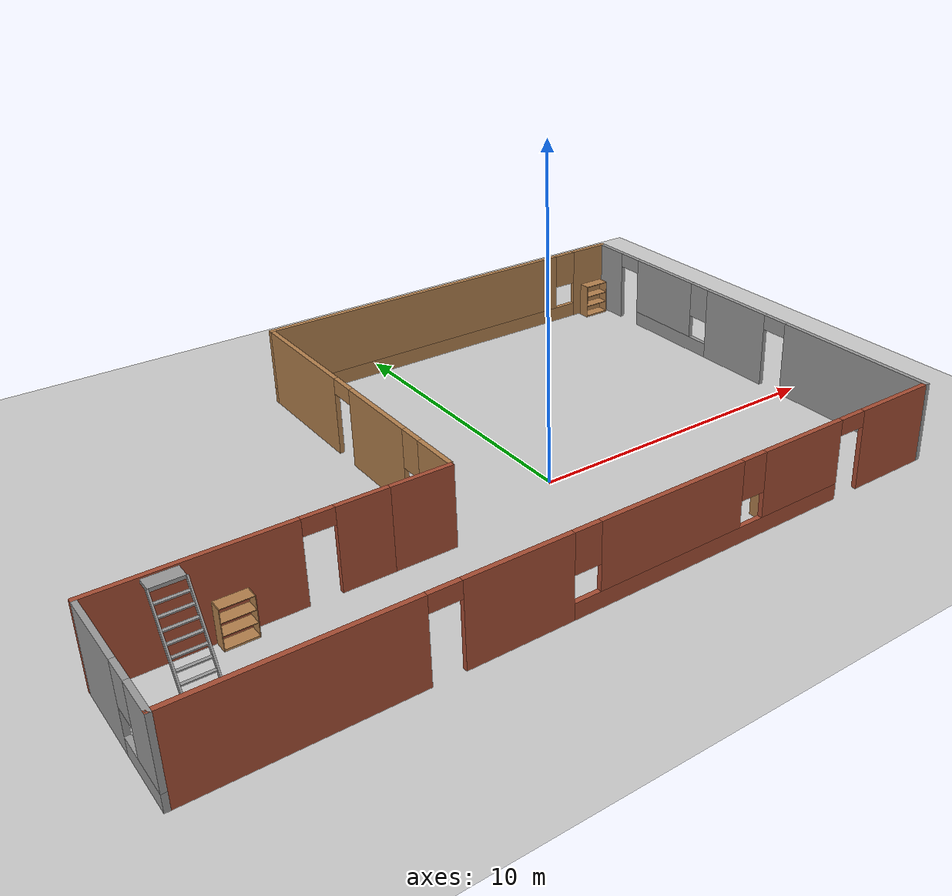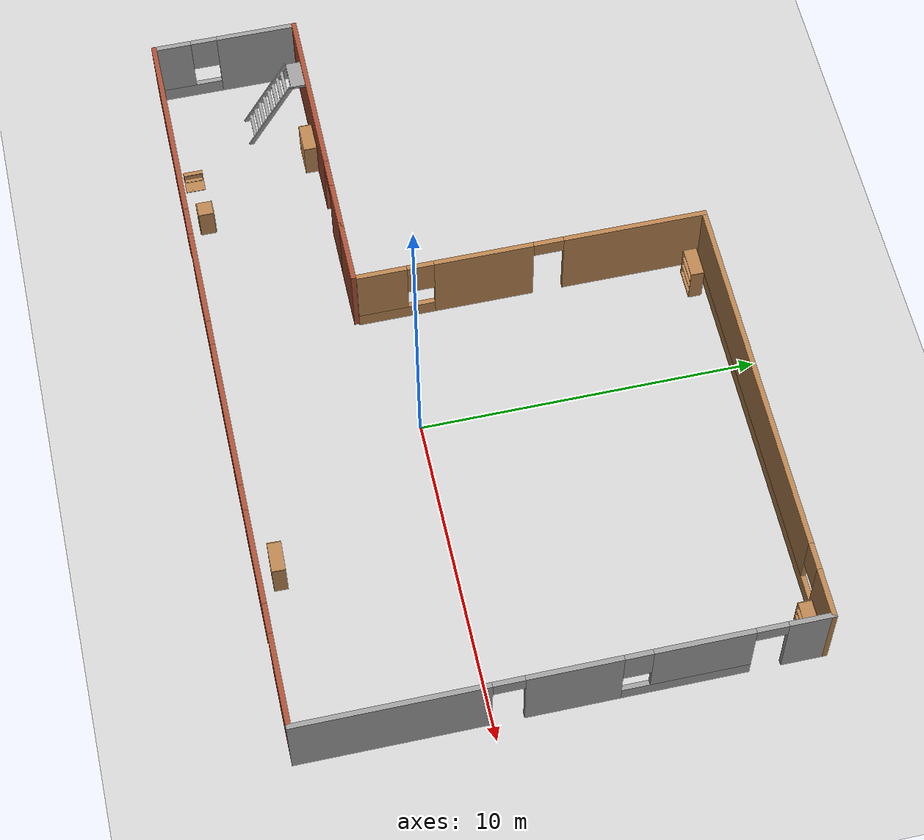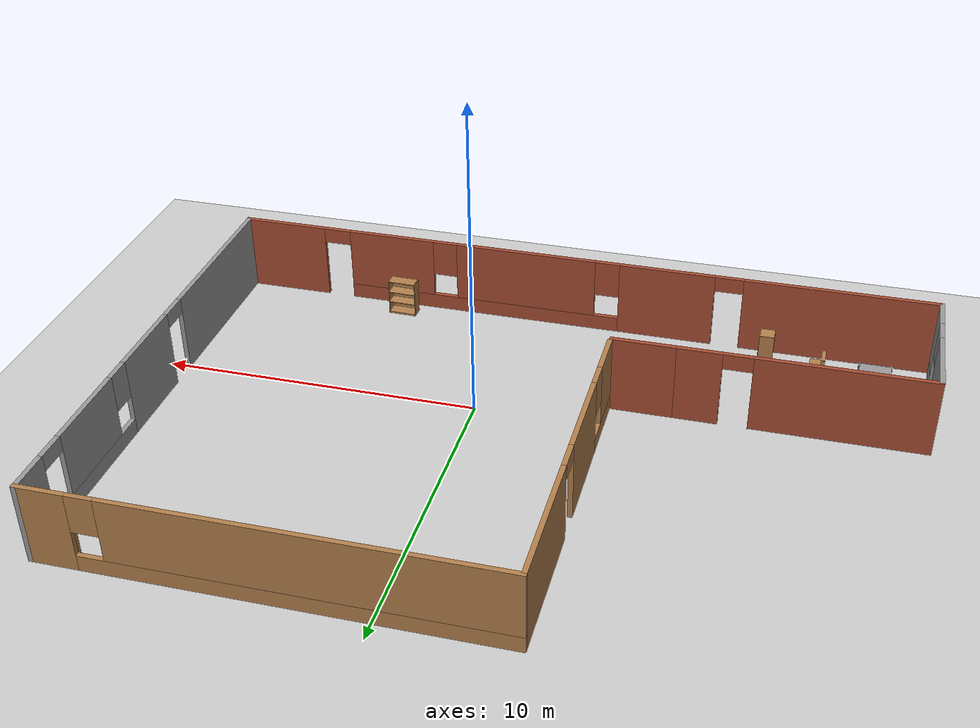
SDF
<sdf version="1.6">
 <world name="default">
  <light name="sun" type="directional">
   <pose>0 0 10 0 -0 0</pose>
   <diffuse>0.8 0.8 0.8 1</diffuse>
   <specular>0.2 0.2 0.2 1</specular>
   <attenuation>
    <range>1000</range>
    <constant>0.9</constant>
    <linear>0.01</linear>
    <quadratic>0.001</quadratic>
   </attenuation>
   <direction>-0.5 0.1 -0.9</direction>
  </light>
  <model name="ground_plane">
   <static>1</static>
   <link name="link">
    <collision name="collision">
     <geometry><plane><normal>0 0 1</normal><size>100 100</size></plane></geometry>
     <surface>
      <contact><collide_bitmask>65535</collide_bitmask></contact>
      <friction><ode><mu>100</mu><mu2>50</mu2></ode></friction>
     </surface>
    </collision>
    <visual name="visual">
     <cast_shadows>0</cast_shadows>
     <geometry><plane><normal>0 0 1</normal><size>100 100</size></plane></geometry>
     <material>
      <script><uri>file://media/materials/scripts/gazebo.material</uri><name>Gazebo/Grey</name></script>
     </material>
    </visual>
   </link>
  </model>
  <gravity>0 0 -9.8</gravity>
  <magnetic_field>6e-06 2.3e-05 -4.2e-05</magnetic_field>
  <atmosphere type="adiabatic"/>
  <physics name="default_physics" default="0" type="ode">
   <max_step_size>0.001</max_step_size>
   <real_time_factor>1</real_time_factor>
   <real_time_update_rate>1000</real_time_update_rate>
  </physics>
  <scene><ambient>0.4 0.4 0.4 1</ambient><background>0.7 0.7 0.7 1</background><shadows>1</shadows></scene>
  <spherical_coordinates>
   <surface_model>EARTH_WGS84</surface_model>
   <latitude_deg>0</latitude_deg>
   <longitude_deg>0</longitude_deg>
   <elevation>0</elevation>
   <heading_deg>0</heading_deg>
  </spherical_coordinates>
  <model name="b2">
   <pose>-1.985 1.955 0 0 -0 0</pose>
   <link name="Wall_0">
    <collision name="Wall_0_Collision">
     <geometry><box><size>2 0.15 2.5</size></box></geometry>
     <pose>0 0 1.25 0 -0 0</pose>
    </collision>
    <visual name="Wall_0_Visual">
     <pose>0 0 1.25 0 -0 0</pose>
     <geometry><box><size>2 0.15 2.5</size></box></geometry>
     <material>
      <script><uri>file://media/materials/scripts/gazebo.material</uri><name>Gazebo/Bricks</name></script>
      <ambient>1 1 1 1</ambient>
     </material>
     <meta><layer>0</layer></meta>
    </visual>
    <pose>-2.9 -3.075 0 0 -0 3.14159</pose>
   </link>
   <link name="Wall_1">
    <pose>-7.625 -3.075 0 0 -0 3.14159</pose>
    <visual name="Wall_1_Visual_0">
     <pose>-3.11797 0 1.25 0 -0 0</pose>
     <geometry><box><size>1.51407 0.15 2.5</size></box></geometry>
     <material>
      <script><uri>file://media/materials/scripts/gazebo.material</uri><name>Gazebo/Bricks</name></script>
      <ambient>1 1 1 1</ambient>
     </material>
     <meta><layer>0</layer></meta>
    </visual>
    <collision name="Wall_1_Collision_0">
     <geometry><box><size>1.51407 0.15 2.5</size></box></geometry>
     <pose>-3.11797 0 1.25 0 -0 0</pose>
    </collision>
    <visual name="Wall_1_Visual_1">
     <pose>1.20703 0 1.25 0 -0 0</pose>
     <geometry><box><size>5.33593 0.15 2.5</size></box></geometry>
     <material>
      <script><uri>file://media/materials/scripts/gazebo.material</uri><name>Gazebo/Bricks</name></script>
      <ambient>1 1 1 1</ambient>
     </material>
     <meta><layer>0</layer></meta>
    </visual>
    <collision name="Wall_1_Collision_1">
     <geometry><box><size>5.33593 0.15 2.5</size></box></geometry>
     <pose>1.20703 0 1.25 0 -0 0</pose>
    </collision>
    <visual name="Wall_1_Visual_2">
     <pose>-1.91093 0 2.25 0 -0 0</pose>
     <geometry><box><size>0.9 0.15 0.5</size></box></geometry>
     <material>
      <script><uri>file://media/materials/scripts/gazebo.material</uri><name>Gazebo/Bricks</name></script>
      <ambient>1 1 1 1</ambient>
     </material>
     <meta><layer>0</layer></meta>
    </visual>
    <collision name="Wall_1_Collision_2">
     <geometry><box><size>0.9 0.15 0.5</size></box></geometry>
     <pose>-1.91093 0 2.25 0 -0 0</pose>
    </collision>
   </link>
   <link name="Wall_2">
    <pose>-11.425 -5.25 0 0 0 -1.5708</pose>
    <visual name="Wall_2_Visual_0">
     <pose>-1.00023 0 1.25 0 -0 0</pose>
     <geometry><box><size>2.49953 0.15 2.5</size></box></geometry>
     <material>
      <script><uri>file://media/materials/scripts/gazebo.material</uri><name>Gazebo/Grey</name></script>
      <ambient>1 1 1 1</ambient>
     </material>
     <meta><layer>0</layer></meta>
    </visual>
    <collision name="Wall_2_Collision_0">
     <geometry><box><size>2.49953 0.15 2.5</size></box></geometry>
     <pose>-1.00023 0 1.25 0 -0 0</pose>
    </collision>
    <visual name="Wall_2_Visual_1">
     <pose>1.24977 0 0.25 0 -0 0</pose>
     <geometry><box><size>2.00047 0.15 0.5</size></box></geometry>
     <material>
      <script><uri>file://media/materials/scripts/gazebo.material</uri><name>Gazebo/Grey</name></script>
      <ambient>1 1 1 1</ambient>
     </material>
     <meta><layer>0</layer></meta>
    </visual>
    <collision name="Wall_2_Collision_1">
     <geometry><box><size>2.00047 0.15 0.5</size></box></geometry>
     <pose>1.24977 0 0.25 0 -0 0</pose>
    </collision>
    <visual name="Wall_2_Visual_2">
     <pose>1.64977 0 1.5 0 -0 0</pose>
     <geometry><box><size>1.20047 0.15 2</size></box></geometry>
     <material>
      <script><uri>file://media/materials/scripts/gazebo.material</uri><name>Gazebo/Grey</name></script>
      <ambient>1 1 1 1</ambient>
     </material>
     <meta><layer>0</layer></meta>
    </visual>
    <collision name="Wall_2_Collision_2">
     <geometry><box><size>1.20047 0.15 2</size></box></geometry>
     <pose>1.64977 0 1.5 0 -0 0</pose>
    </collision>
    <visual name="Wall_2_Visual_3">
     <pose>0.649531 0 1.9 0 -0 0</pose>
     <geometry><box><size>0.8 0.15 1.2</size></box></geometry>
     <material>
      <script><uri>file://media/materials/scripts/gazebo.material</uri><name>Gazebo/Grey</name></script>
      <ambient>1 1 1 1</ambient>
     </material>
     <meta><layer>0</layer></meta>
    </visual>
    <collision name="Wall_2_Collision_3">
     <geometry><box><size>0.8 0.15 1.2</size></box></geometry>
     <pose>0.649531 0 1.9 0 -0 0</pose>
    </collision>
   </link>
   <link name="Wall_3">
    <pose>0 -7.425 0 0 -0 0</pose>
    <visual name="Wall_3_Visual_0">
     <pose>-8.43203 0 1.25 0 -0 0</pose>
     <geometry><box><size>6.13593 0.15 2.5</size></box></geometry>
     <material>
      <script><uri>file://media/materials/scripts/gazebo.material</uri><name>Gazebo/Bricks</name></script>
      <ambient>1 1 1 1</ambient>
     </material>
     <meta><layer>0</layer></meta>
    </visual>
    <collision name="Wall_3_Collision_0">
     <geometry><box><size>6.13593 0.15 2.5</size></box></geometry>
     <pose>-8.43203 0 1.25 0 -0 0</pose>
    </collision>
    <visual name="Wall_3_Visual_1">
     <pose>-2.92385 0 1.25 0 -0 0</pose>
     <geometry><box><size>3.08044 0.15 2.5</size></box></geometry>
     <material>
      <script><uri>file://media/materials/scripts/gazebo.material</uri><name>Gazebo/Bricks</name></script>
      <ambient>1 1 1 1</ambient>
     </material>
     <meta><layer>0</layer></meta>
    </visual>
    <collision name="Wall_3_Collision_1">
     <geometry><box><size>3.08044 0.15 2.5</size></box></geometry>
     <pose>-2.92385 0 1.25 0 -0 0</pose>
    </collision>
    <visual name="Wall_3_Visual_2">
     <pose>10.0919 0 1.25 0 -0 0</pose>
     <geometry><box><size>2.81624 0.15 2.5</size></box></geometry>
     <material>
      <script><uri>file://media/materials/scripts/gazebo.material</uri><name>Gazebo/Bricks</name></script>
      <ambient>1 1 1 1</ambient>
     </material>
     <meta><layer>0</layer></meta>
    </visual>
    <collision name="Wall_3_Collision_2">
     <geometry><box><size>2.81624 0.15 2.5</size></box></geometry>
     <pose>10.0919 0 1.25 0 -0 0</pose>
    </collision>
    <visual name="Wall_3_Visual_3">
     <pose>3.20006 0 0.25 0 -0 0</pose>
     <geometry><box><size>9.16739 0.15 0.5</size></box></geometry>
     <material>
      <script><uri>file://media/materials/scripts/gazebo.material</uri><name>Gazebo/Bricks</name></script>
      <ambient>1 1 1 1</ambient>
     </material>
     <meta><layer>0</layer></meta>
    </visual>
    <collision name="Wall_3_Collision_3">
     <geometry><box><size>9.16739 0.15 0.5</size></box></geometry>
     <pose>3.20006 0 0.25 0 -0 0</pose>
    </collision>
    <visual name="Wall_3_Visual_4">
     <pose>1.7468 0 1.5 0 -0 0</pose>
     <geometry><box><size>4.66087 0.15 2</size></box></geometry>
     <material>
      <script><uri>file://media/materials/scripts/gazebo.material</uri><name>Gazebo/Bricks</name></script>
      <ambient>1 1 1 1</ambient>
     </material>
     <meta><layer>0</layer></meta>
    </visual>
    <collision name="Wall_3_Collision_4">
     <geometry><box><size>4.66087 0.15 2</size></box></geometry>
     <pose>1.7468 0 1.5 0 -0 0</pose>
    </collision>
    <visual name="Wall_3_Visual_5">
     <pose>6.3305 0 1.5 0 -0 0</pose>
     <geometry><box><size>2.90652 0.15 2</size></box></geometry>
     <material>
      <script><uri>file://media/materials/scripts/gazebo.material</uri><name>Gazebo/Bricks</name></script>
      <ambient>1 1 1 1</ambient>
     </material>
     <meta><layer>0</layer></meta>
    </visual>
    <collision name="Wall_3_Collision_5">
     <geometry><box><size>2.90652 0.15 2</size></box></geometry>
     <pose>6.3305 0 1.5 0 -0 0</pose>
    </collision>
    <visual name="Wall_3_Visual_6">
     <pose>-0.983634 0 1.9 0 -0 0</pose>
     <geometry><box><size>0.8 0.15 1.2</size></box></geometry>
     <material>
      <script><uri>file://media/materials/scripts/gazebo.material</uri><name>Gazebo/Bricks</name></script>
      <ambient>1 1 1 1</ambient>
     </material>
     <meta><layer>0</layer></meta>
    </visual>
    <collision name="Wall_3_Collision_6">
     <geometry><box><size>0.8 0.15 1.2</size></box></geometry>
     <pose>-0.983634 0 1.9 0 -0 0</pose>
    </collision>
    <visual name="Wall_3_Visual_7">
     <pose>4.47724 0 1.9 0 -0 0</pose>
     <geometry><box><size>0.8 0.15 1.2</size></box></geometry>
     <material>
      <script><uri>file://media/materials/scripts/gazebo.material</uri><name>Gazebo/Bricks</name></script>
      <ambient>1 1 1 1</ambient>
     </material>
     <meta><layer>0</layer></meta>
    </visual>
    <collision name="Wall_3_Collision_7">
     <geometry><box><size>0.8 0.15 1.2</size></box></geometry>
     <pose>4.47724 0 1.9 0 -0 0</pose>
    </collision>
    <visual name="Wall_3_Visual_8">
     <pose>-4.91407 0 2.25 0 -0 0</pose>
     <geometry><box><size>0.9 0.15 0.5</size></box></geometry>
     <material>
      <script><uri>file://media/materials/scripts/gazebo.material</uri><name>Gazebo/Bricks</name></script>
      <ambient>1 1 1 1</ambient>
     </material>
     <meta><layer>0</layer></meta>
    </visual>
    <collision name="Wall_3_Collision_8">
     <geometry><box><size>0.9 0.15 0.5</size></box></geometry>
     <pose>-4.91407 0 2.25 0 -0 0</pose>
    </collision>
    <visual name="Wall_3_Visual_9">
     <pose>8.23376 0 2.25 0 -0 0</pose>
     <geometry><box><size>0.9 0.15 0.5</size></box></geometry>
     <material>
      <script><uri>file://media/materials/scripts/gazebo.material</uri><name>Gazebo/Bricks</name></script>
      <ambient>1 1 1 1</ambient>
     </material>
     <meta><layer>0</layer></meta>
    </visual>
    <collision name="Wall_3_Collision_9">
     <geometry><box><size>0.9 0.15 0.5</size></box></geometry>
     <pose>8.23376 0 2.25 0 -0 0</pose>
    </collision>
   </link>
   <link name="Wall_4">
    <pose>11.425 0 0 0 -0 1.5708</pose>
    <visual name="Wall_4_Visual_0">
     <pose>-4.73346 0 1.25 0 -0 0</pose>
     <geometry><box><size>5.53308 0.15 2.5</size></box></geometry>
     <material>
      <script><uri>file://media/materials/scripts/gazebo.material</uri><name>Gazebo/Grey</name></script>
      <ambient>1 1 1 1</ambient>
     </material>
     <meta><layer>0</layer></meta>
    </visual>
    <collision name="Wall_4_Collision_0">
     <geometry><box><size>5.53308 0.15 2.5</size></box></geometry>
     <pose>-4.73346 0 1.25 0 -0 0</pose>
    </collision>
    <visual name="Wall_4_Visual_1">
     <pose>0.281991 0 1.25 0 -0 0</pose>
     <geometry><box><size>2.69783 0.15 2.5</size></box></geometry>
     <material>
      <script><uri>file://media/materials/scripts/gazebo.material</uri><name>Gazebo/Grey</name></script>
      <ambient>1 1 1 1</ambient>
     </material>
     <meta><layer>0</layer></meta>
    </visual>
    <collision name="Wall_4_Collision_1">
     <geometry><box><size>2.69783 0.15 2.5</size></box></geometry>
     <pose>0.281991 0 1.25 0 -0 0</pose>
    </collision>
    <visual name="Wall_4_Visual_2">
     <pose>6.83393 0 1.25 0 -0 0</pose>
     <geometry><box><size>1.33214 0.15 2.5</size></box></geometry>
     <material>
      <script><uri>file://media/materials/scripts/gazebo.material</uri><name>Gazebo/Grey</name></script>
      <ambient>1 1 1 1</ambient>
     </material>
     <meta><layer>0</layer></meta>
    </visual>
    <collision name="Wall_4_Collision_2">
     <geometry><box><size>1.33214 0.15 2.5</size></box></geometry>
     <pose>6.83393 0 1.25 0 -0 0</pose>
    </collision>
    <visual name="Wall_4_Visual_3">
     <pose>3.44938 0 0.25 0 -0 0</pose>
     <geometry><box><size>3.63696 0.15 0.5</size></box></geometry>
     <material>
      <script><uri>file://media/materials/scripts/gazebo.material</uri><name>Gazebo/Grey</name></script>
      <ambient>1 1 1 1</ambient>
     </material>
     <meta><layer>0</layer></meta>
    </visual>
    <collision name="Wall_4_Collision_3">
     <geometry><box><size>3.63696 0.15 0.5</size></box></geometry>
     <pose>3.44938 0 0.25 0 -0 0</pose>
    </collision>
    <visual name="Wall_4_Visual_4">
     <pose>3.84938 0 1.5 0 -0 0</pose>
     <geometry><box><size>2.83696 0.15 2</size></box></geometry>
     <material>
      <script><uri>file://media/materials/scripts/gazebo.material</uri><name>Gazebo/Grey</name></script>
      <ambient>1 1 1 1</ambient>
     </material>
     <meta><layer>0</layer></meta>
    </visual>
    <collision name="Wall_4_Collision_4">
     <geometry><box><size>2.83696 0.15 2</size></box></geometry>
     <pose>3.84938 0 1.5 0 -0 0</pose>
    </collision>
    <visual name="Wall_4_Visual_5">
     <pose>2.0309 0 1.9 0 -0 0</pose>
     <geometry><box><size>0.8 0.15 1.2</size></box></geometry>
     <material>
      <script><uri>file://media/materials/scripts/gazebo.material</uri><name>Gazebo/Grey</name></script>
      <ambient>1 1 1 1</ambient>
     </material>
     <meta><layer>0</layer></meta>
    </visual>
    <collision name="Wall_4_Collision_5">
     <geometry><box><size>0.8 0.15 1.2</size></box></geometry>
     <pose>2.0309 0 1.9 0 -0 0</pose>
    </collision>
    <visual name="Wall_4_Visual_6">
     <pose>-1.51692 0 2.25 0 -0 0</pose>
     <geometry><box><size>0.9 0.15 0.5</size></box></geometry>
     <material>
      <script><uri>file://media/materials/scripts/gazebo.material</uri><name>Gazebo/Grey</name></script>
      <ambient>1 1 1 1</ambient>
     </material>
     <meta><layer>0</layer></meta>
    </visual>
    <collision name="Wall_4_Collision_6">
     <geometry><box><size>0.9 0.15 0.5</size></box></geometry>
     <pose>-1.51692 0 2.25 0 -0 0</pose>
    </collision>
    <visual name="Wall_4_Visual_7">
     <pose>5.71786 0 2.25 0 -0 0</pose>
     <geometry><box><size>0.9 0.15 0.5</size></box></geometry>
     <material>
      <script><uri>file://media/materials/scripts/gazebo.material</uri><name>Gazebo/Grey</name></script>
      <ambient>1 1 1 1</ambient>
     </material>
     <meta><layer>0</layer></meta>
    </visual>
    <collision name="Wall_4_Collision_7">
     <geometry><box><size>0.9 0.15 0.5</size></box></geometry>
     <pose>5.71786 0 2.25 0 -0 0</pose>
    </collision>
   </link>
   <link name="Wall_5">
    <pose>4.75 7.425 0 0 -0 3.14159</pose>
    <visual name="Wall_5_Visual_0">
     <pose>-6.01253 0 1.25 0 -0 0</pose>
     <geometry><box><size>1.47494 0.15 2.5</size></box></geometry>
     <material>
      <script><uri>file://media/materials/scripts/gazebo.material</uri><name>Gazebo/Wood</name></script>
      <ambient>1 1 1 1</ambient>
     </material>
     <meta><layer>0</layer></meta>
    </visual>
    <collision name="Wall_5_Collision_0">
     <geometry><box><size>1.47494 0.15 2.5</size></box></geometry>
     <pose>-6.01253 0 1.25 0 -0 0</pose>
    </collision>
    <visual name="Wall_5_Visual_1">
     <pose>0.737469 0 0.25 0 -0 0</pose>
     <geometry><box><size>12.0251 0.15 0.5</size></box></geometry>
     <material>
      <script><uri>file://media/materials/scripts/gazebo.material</uri><name>Gazebo/Wood</name></script>
      <ambient>1 1 1 1</ambient>
     </material>
     <meta><layer>0</layer></meta>
    </visual>
    <collision name="Wall_5_Collision_1">
     <geometry><box><size>12.0251 0.15 0.5</size></box></geometry>
     <pose>0.737469 0 0.25 0 -0 0</pose>
    </collision>
    <visual name="Wall_5_Visual_2">
     <pose>1.13747 0 1.5 0 -0 0</pose>
     <geometry><box><size>11.2251 0.15 2</size></box></geometry>
     <material>
      <script><uri>file://media/materials/scripts/gazebo.material</uri><name>Gazebo/Wood</name></script>
      <ambient>1 1 1 1</ambient>
     </material>
     <meta><layer>0</layer></meta>
    </visual>
    <collision name="Wall_5_Collision_2">
     <geometry><box><size>11.2251 0.15 2</size></box></geometry>
     <pose>1.13747 0 1.5 0 -0 0</pose>
    </collision>
    <visual name="Wall_5_Visual_3">
     <pose>-4.87506 0 1.9 0 -0 0</pose>
     <geometry><box><size>0.8 0.15 1.2</size></box></geometry>
     <material>
      <script><uri>file://media/materials/scripts/gazebo.material</uri><name>Gazebo/Wood</name></script>
      <ambient>1 1 1 1</ambient>
     </material>
     <meta><layer>0</layer></meta>
    </visual>
    <collision name="Wall_5_Collision_3">
     <geometry><box><size>0.8 0.15 1.2</size></box></geometry>
     <pose>-4.87506 0 1.9 0 -0 0</pose>
    </collision>
   </link>
   <link name="Wall_6">
    <pose>-1.925 2.25 0 0 0 -1.5708</pose>
    <visual name="Wall_6_Visual_0">
     <pose>-3.08828 0 1.25 0 -0 0</pose>
     <geometry><box><size>4.32344 0.15 2.5</size></box></geometry>
     <material>
      <script><uri>file://media/materials/scripts/gazebo.material</uri><name>Gazebo/Wood</name></script>
      <ambient>1 1 1 1</ambient>
     </material>
     <meta><layer>0</layer></meta>
    </visual>
    <collision name="Wall_6_Collision_0">
     <geometry><box><size>4.32344 0.15 2.5</size></box></geometry>
     <pose>-3.08828 0 1.25 0 -0 0</pose>
    </collision>
    <visual name="Wall_6_Visual_1">
     <pose>1.46149 0 1.25 0 -0 0</pose>
     <geometry><box><size>2.97609 0.15 2.5</size></box></geometry>
     <material>
      <script><uri>file://media/materials/scripts/gazebo.material</uri><name>Gazebo/Wood</name></script>
      <ambient>1 1 1 1</ambient>
     </material>
     <meta><layer>0</layer></meta>
    </visual>
    <collision name="Wall_6_Collision_1">
     <geometry><box><size>2.97609 0.15 2.5</size></box></geometry>
     <pose>1.46149 0 1.25 0 -0 0</pose>
    </collision>
    <visual name="Wall_6_Visual_2">
     <pose>4.09977 0 0.25 0 -0 0</pose>
     <geometry><box><size>2.30047 0.15 0.5</size></box></geometry>
     <material>
      <script><uri>file://media/materials/scripts/gazebo.material</uri><name>Gazebo/Wood</name></script>
      <ambient>1 1 1 1</ambient>
     </material>
     <meta><layer>0</layer></meta>
    </visual>
    <collision name="Wall_6_Collision_2">
     <geometry><box><size>2.30047 0.15 0.5</size></box></geometry>
     <pose>4.09977 0 0.25 0 -0 0</pose>
    </collision>
    <visual name="Wall_6_Visual_3">
     <pose>4.49977 0 1.5 0 -0 0</pose>
     <geometry><box><size>1.50047 0.15 2</size></box></geometry>
     <material>
      <script><uri>file://media/materials/scripts/gazebo.material</uri><name>Gazebo/Wood</name></script>
      <ambient>1 1 1 1</ambient>
     </material>
     <meta><layer>0</layer></meta>
    </visual>
    <collision name="Wall_6_Collision_3">
     <geometry><box><size>1.50047 0.15 2</size></box></geometry>
     <pose>4.49977 0 1.5 0 -0 0</pose>
    </collision>
    <visual name="Wall_6_Visual_4">
     <pose>3.34953 0 1.9 0 -0 0</pose>
     <geometry><box><size>0.8 0.15 1.2</size></box></geometry>
     <material>
      <script><uri>file://media/materials/scripts/gazebo.material</uri><name>Gazebo/Wood</name></script>
      <ambient>1 1 1 1</ambient>
     </material>
     <meta><layer>0</layer></meta>
    </visual>
    <collision name="Wall_6_Collision_4">
     <geometry><box><size>0.8 0.15 1.2</size></box></geometry>
     <pose>3.34953 0 1.9 0 -0 0</pose>
    </collision>
    <visual name="Wall_6_Visual_5">
     <pose>-0.476556 0 2.25 0 -0 0</pose>
     <geometry><box><size>0.9 0.15 0.5</size></box></geometry>
     <material>
      <script><uri>file://media/materials/scripts/gazebo.material</uri><name>Gazebo/Wood</name></script>
      <ambient>1 1 1 1</ambient>
     </material>
     <meta><layer>0</layer></meta>
    </visual>
    <collision name="Wall_6_Collision_5">
     <geometry><box><size>0.9 0.15 0.5</size></box></geometry>
     <pose>-0.476556 0 2.25 0 -0 0</pose>
    </collision>
   </link>
   <static>1</static>
  </model>
  <model name="bookshelf">
   <static>1</static>
   <link name="link">
    <inertial><mass>1</mass></inertial>
    <collision name="back">
     <pose>0 0.005 0.6 0 -0 0</pose>
     <geometry><box><size>0.9 0.01 1.2</size></box></geometry>
    </collision>
    <visual name="visual1">
     <pose>0 0.005 0.6 0 -0 0</pose>
     <geometry><box><size>0.9 0.01 1.2</size></box></geometry>
     <material>
      <script><uri>file://media/materials/scripts/gazebo.material</uri><name>Gazebo/Wood</name></script>
     </material>
    </visual>
    <collision name="left_side">
     <pose>0.45 -0.195 0.6 0 -0 0</pose>
     <geometry><box><size>0.02 0.4 1.2</size></box></geometry>
    </collision>
    <visual name="visual2">
     <pose>0.45 -0.195 0.6 0 -0 0</pose>
     <geometry><box><size>0.02 0.4 1.2</size></box></geometry>
     <material>
      <script><uri>file://media/materials/scripts/gazebo.material</uri><name>Gazebo/Wood</name></script>
     </material>
    </visual>
    <collision name="right_side">
     <pose>-0.45 -0.195 0.6 0 -0 0</pose>
     <geometry><box><size>0.02 0.4 1.2</size></box></geometry>
    </collision>
    <visual name="visual3">
     <pose>-0.45 -0.195 0.6 0 -0 0</pose>
     <geometry><box><size>0.02 0.4 1.2</size></box></geometry>
     <material>
      <script><uri>file://media/materials/scripts/gazebo.material</uri><name>Gazebo/Wood</name></script>
     </material>
    </visual>
    <collision name="bottom">
     <pose>0 -0.195 0.03 0 -0 0</pose>
     <geometry><box><size>0.88 0.4 0.06</size></box></geometry>
    </collision>
    <visual name="visual4">
     <pose>0 -0.195 0.03 0 -0 0</pose>
     <geometry><box><size>0.88 0.4 0.06</size></box></geometry>
     <material>
      <script><uri>file://media/materials/scripts/gazebo.material</uri><name>Gazebo/Wood</name></script>
     </material>
    </visual>
    <collision name="top">
     <pose>0 -0.195 1.19 0 -0 0</pose>
     <geometry><box><size>0.88 0.4 0.02</size></box></geometry>
    </collision>
    <visual name="visual5">
     <pose>0 -0.195 1.19 0 -0 0</pose>
     <geometry><box><size>0.88 0.4 0.02</size></box></geometry>
     <material>
      <script><uri>file://media/materials/scripts/gazebo.material</uri><name>Gazebo/Wood</name></script>
     </material>
    </visual>
    <collision name="low_shelf">
     <pose>0 -0.195 0.43 0 -0 0</pose>
     <geometry><box><size>0.88 0.4 0.02</size></box></geometry>
    </collision>
    <visual name="visual6">
     <pose>0 -0.195 0.43 0 -0 0</pose>
     <geometry><box><size>0.88 0.4 0.02</size></box></geometry>
     <material>
      <script><uri>file://media/materials/scripts/gazebo.material</uri><name>Gazebo/Wood</name></script>
     </material>
    </visual>
    <collision name="high_shelf">
     <pose>0 -0.195 0.8 0 -0 0</pose>
     <geometry><box><size>0.88 0.4 0.02</size></box></geometry>
    </collision>
    <visual name="visual7">
     <pose>0 -0.195 0.8 0 -0 0</pose>
     <geometry><box><size>0.88 0.4 0.02</size></box></geometry>
     <material>
      <script><uri>file://media/materials/scripts/gazebo.material</uri><name>Gazebo/Wood</name></script>
     </material>
    </visual>
   </link>
   <pose>-3.1237 9.14133 0 0 -0 0</pose>
  </model>
  <model name="bookshelf_clone">
   <static>1</static>
   <link name="link">
    <inertial><mass>1</mass></inertial>
    <collision name="back">
     <pose>0 0.005 0.6 0 -0 0</pose>
     <geometry><box><size>0.9 0.01 1.2</size></box></geometry>
    </collision>
    <visual name="visual1">
     <pose>0 0.005 0.6 0 -0 0</pose>
     <geometry><box><size>0.9 0.01 1.2</size></box></geometry>
     <material>
      <script><uri>file://media/materials/scripts/gazebo.material</uri><name>Gazebo/Wood</name></script>
     </material>
    </visual>
    <collision name="left_side">
     <pose>0.45 -0.195 0.6 0 -0 0</pose>
     <geometry><box><size>0.02 0.4 1.2</size></box></geometry>
    </collision>
    <visual name="visual2">
     <pose>0.45 -0.195 0.6 0 -0 0</pose>
     <geometry><box><size>0.02 0.4 1.2</size></box></geometry>
     <material>
      <script><uri>file://media/materials/scripts/gazebo.material</uri><name>Gazebo/Wood</name></script>
     </material>
    </visual>
    <collision name="right_side">
     <pose>-0.45 -0.195 0.6 0 -0 0</pose>
     <geometry><box><size>0.02 0.4 1.2</size></box></geometry>
    </collision>
    <visual name="visual3">
     <pose>-0.45 -0.195 0.6 0 -0 0</pose>
     <geometry><box><size>0.02 0.4 1.2</size></box></geometry>
     <material>
      <script><uri>file://media/materials/scripts/gazebo.material</uri><name>Gazebo/Wood</name></script>
     </material>
    </visual>
    <collision name="bottom">
     <pose>0 -0.195 0.03 0 -0 0</pose>
     <geometry><box><size>0.88 0.4 0.06</size></box></geometry>
    </collision>
    <visual name="visual4">
     <pose>0 -0.195 0.03 0 -0 0</pose>
     <geometry><box><size>0.88 0.4 0.06</size></box></geometry>
     <material>
      <script><uri>file://media/materials/scripts/gazebo.material</uri><name>Gazebo/Wood</name></script>
     </material>
    </visual>
    <collision name="top">
     <pose>0 -0.195 1.19 0 -0 0</pose>
     <geometry><box><size>0.88 0.4 0.02</size></box></geometry>
    </collision>
    <visual name="visual5">
     <pose>0 -0.195 1.19 0 -0 0</pose>
     <geometry><box><size>0.88 0.4 0.02</size></box></geometry>
     <material>
      <script><uri>file://media/materials/scripts/gazebo.material</uri><name>Gazebo/Wood</name></script>
     </material>
    </visual>
    <collision name="low_shelf">
     <pose>0 -0.195 0.43 0 -0 0</pose>
     <geometry><box><size>0.88 0.4 0.02</size></box></geometry>
    </collision>
    <visual name="visual6">
     <pose>0 -0.195 0.43 0 -0 0</pose>
     <geometry><box><size>0.88 0.4 0.02</size></box></geometry>
     <material>
      <script><uri>file://media/materials/scripts/gazebo.material</uri><name>Gazebo/Wood</name></script>
     </material>
    </visual>
    <collision name="high_shelf">
     <pose>0 -0.195 0.8 0 -0 0</pose>
     <geometry><box><size>0.88 0.4 0.02</size></box></geometry>
    </collision>
    <visual name="visual7">
     <pose>0 -0.195 0.8 0 -0 0</pose>
     <geometry><box><size>0.88 0.4 0.02</size></box></geometry>
     <material>
      <script><uri>file://media/materials/scripts/gazebo.material</uri><name>Gazebo/Wood</name></script>
     </material>
    </visual>
   </link>
   <pose>8.77204 9.22413 0 0 -0 0</pose>
  </model>
  <model name="bookshelf_clone_0">
   <static>1</static>
   <link name="link">
    <inertial><mass>1</mass></inertial>
    <collision name="back">
     <pose>0 0.005 0.6 0 -0 0</pose>
     <geometry><box><size>0.9 0.01 1.2</size></box></geometry>
    </collision>
    <visual name="visual1">
     <pose>0 0.005 0.6 0 -0 0</pose>
     <geometry><box><size>0.9 0.01 1.2</size></box></geometry>
     <material>
      <script><uri>file://media/materials/scripts/gazebo.material</uri><name>Gazebo/Wood</name></script>
     </material>
    </visual>
    <collision name="left_side">
     <pose>0.45 -0.195 0.6 0 -0 0</pose>
     <geometry><box><size>0.02 0.4 1.2</size></box></geometry>
    </collision>
    <visual name="visual2">
     <pose>0.45 -0.195 0.6 0 -0 0</pose>
     <geometry><box><size>0.02 0.4 1.2</size></box></geometry>
     <material>
      <script><uri>file://media/materials/scripts/gazebo.material</uri><name>Gazebo/Wood</name></script>
     </material>
    </visual>
    <collision name="right_side">
     <pose>-0.45 -0.195 0.6 0 -0 0</pose>
     <geometry><box><size>0.02 0.4 1.2</size></box></geometry>
    </collision>
    <visual name="visual3">
     <pose>-0.45 -0.195 0.6 0 -0 0</pose>
     <geometry><box><size>0.02 0.4 1.2</size></box></geometry>
     <material>
      <script><uri>file://media/materials/scripts/gazebo.material</uri><name>Gazebo/Wood</name></script>
     </material>
    </visual>
    <collision name="bottom">
     <pose>0 -0.195 0.03 0 -0 0</pose>
     <geometry><box><size>0.88 0.4 0.06</size></box></geometry>
    </collision>
    <visual name="visual4">
     <pose>0 -0.195 0.03 0 -0 0</pose>
     <geometry><box><size>0.88 0.4 0.06</size></box></geometry>
     <material>
      <script><uri>file://media/materials/scripts/gazebo.material</uri><name>Gazebo/Wood</name></script>
     </material>
    </visual>
    <collision name="top">
     <pose>0 -0.195 1.19 0 -0 0</pose>
     <geometry><box><size>0.88 0.4 0.02</size></box></geometry>
    </collision>
    <visual name="visual5">
     <pose>0 -0.195 1.19 0 -0 0</pose>
     <geometry><box><size>0.88 0.4 0.02</size></box></geometry>
     <material>
      <script><uri>file://media/materials/scripts/gazebo.material</uri><name>Gazebo/Wood</name></script>
     </material>
    </visual>
    <collision name="low_shelf">
     <pose>0 -0.195 0.43 0 -0 0</pose>
     <geometry><box><size>0.88 0.4 0.02</size></box></geometry>
    </collision>
    <visual name="visual6">
     <pose>0 -0.195 0.43 0 -0 0</pose>
     <geometry><box><size>0.88 0.4 0.02</size></box></geometry>
     <material>
      <script><uri>file://media/materials/scripts/gazebo.material</uri><name>Gazebo/Wood</name></script>
     </material>
    </visual>
    <collision name="high_shelf">
     <pose>0 -0.195 0.8 0 -0 0</pose>
     <geometry><box><size>0.88 0.4 0.02</size></box></geometry>
    </collision>
    <visual name="visual7">
     <pose>0 -0.195 0.8 0 -0 0</pose>
     <geometry><box><size>0.88 0.4 0.02</size></box></geometry>
     <material>
      <script><uri>file://media/materials/scripts/gazebo.material</uri><name>Gazebo/Wood</name></script>
     </material>
    </visual>
   </link>
   <pose>3.81352 -5.06597 0 0 -0 3.11453</pose>
  </model>
  <model name="bookshelf_clone_1">
   <static>1</static>
   <link name="link">
    <inertial><mass>1</mass></inertial>
    <collision name="back">
     <pose>0 0.005 0.6 0 -0 0</pose>
     <geometry><box><size>0.9 0.01 1.2</size></box></geometry>
    </collision>
    <visual name="visual1">
     <pose>0 0.005 0.6 0 -0 0</pose>
     <geometry><box><size>0.9 0.01 1.2</size></box></geometry>
     <material>
      <script><uri>file://media/materials/scripts/gazebo.material</uri><name>Gazebo/Wood</name></script>
     </material>
    </visual>
    <collision name="left_side">
     <pose>0.45 -0.195 0.6 0 -0 0</pose>
     <geometry><box><size>0.02 0.4 1.2</size></box></geometry>
    </collision>
    <visual name="visual2">
     <pose>0.45 -0.195 0.6 0 -0 0</pose>
     <geometry><box><size>0.02 0.4 1.2</size></box></geometry>
     <material>
      <script><uri>file://media/materials/scripts/gazebo.material</uri><name>Gazebo/Wood</name></script>
     </material>
    </visual>
    <collision name="right_side">
     <pose>-0.45 -0.195 0.6 0 -0 0</pose>
     <geometry><box><size>0.02 0.4 1.2</size></box></geometry>
    </collision>
    <visual name="visual3">
     <pose>-0.45 -0.195 0.6 0 -0 0</pose>
     <geometry><box><size>0.02 0.4 1.2</size></box></geometry>
     <material>
      <script><uri>file://media/materials/scripts/gazebo.material</uri><name>Gazebo/Wood</name></script>
     </material>
    </visual>
    <collision name="bottom">
     <pose>0 -0.195 0.03 0 -0 0</pose>
     <geometry><box><size>0.88 0.4 0.06</size></box></geometry>
    </collision>
    <visual name="visual4">
     <pose>0 -0.195 0.03 0 -0 0</pose>
     <geometry><box><size>0.88 0.4 0.06</size></box></geometry>
     <material>
      <script><uri>file://media/materials/scripts/gazebo.material</uri><name>Gazebo/Wood</name></script>
     </material>
    </visual>
    <collision name="top">
     <pose>0 -0.195 1.19 0 -0 0</pose>
     <geometry><box><size>0.88 0.4 0.02</size></box></geometry>
    </collision>
    <visual name="visual5">
     <pose>0 -0.195 1.19 0 -0 0</pose>
     <geometry><box><size>0.88 0.4 0.02</size></box></geometry>
     <material>
      <script><uri>file://media/materials/scripts/gazebo.material</uri><name>Gazebo/Wood</name></script>
     </material>
    </visual>
    <collision name="low_shelf">
     <pose>0 -0.195 0.43 0 -0 0</pose>
     <geometry><box><size>0.88 0.4 0.02</size></box></geometry>
    </collision>
    <visual name="visual6">
     <pose>0 -0.195 0.43 0 -0 0</pose>
     <geometry><box><size>0.88 0.4 0.02</size></box></geometry>
     <material>
      <script><uri>file://media/materials/scripts/gazebo.material</uri><name>Gazebo/Wood</name></script>
     </material>
    </visual>
    <collision name="high_shelf">
     <pose>0 -0.195 0.8 0 -0 0</pose>
     <geometry><box><size>0.88 0.4 0.02</size></box></geometry>
    </collision>
    <visual name="visual7">
     <pose>0 -0.195 0.8 0 -0 0</pose>
     <geometry><box><size>0.88 0.4 0.02</size></box></geometry>
     <material>
      <script><uri>file://media/materials/scripts/gazebo.material</uri><name>Gazebo/Wood</name></script>
     </material>
    </visual>
   </link>
   <pose>-10.0773 -1.19401 0 0 -0 0</pose>
  </model>
  <model name="ladder_60deg_0rails">
   <static>1</static>
   <link name="step0">
    <pose>0 0.15396 0.266667 0 -0 0</pose>
    <inertial>
     <mass>9.75482</mass>
     <inertia>
      <ixx>0.00957124</ixx>
      <iyy>0.65963</iyy>
      <izz>0.666842</izz>
      <ixy>0</ixy>
      <ixz>0</ixz>
      <iyz>0</iyz>
     </inertia>
    </inertial>
    <collision name="collision"><geometry><box><size>0.9 0.1016 0.0381</size></box></geometry></collision>
    <visual name="visual">
     <geometry><box><size>0.9 0.1016 0.0381</size></box></geometry>
     <material>
      <script><uri>file://media/materials/scripts/gazebo.material</uri><name>Gazebo/Grey</name></script>
     </material>
    </visual>
   </link>
   <link name="step1">
    <pose>0 0.30792 0.533333 0 -0 0</pose>
    <inertial>
     <mass>9.75482</mass>
     <inertia>
      <ixx>0.00957124</ixx>
      <iyy>0.65963</iyy>
      <izz>0.666842</izz>
      <ixy>0</ixy>
      <ixz>0</ixz>
      <iyz>0</iyz>
     </inertia>
    </inertial>
    <collision name="collision"><geometry><box><size>0.9 0.1016 0.0381</size></box></geometry></collision>
    <visual name="visual">
     <geometry><box><size>0.9 0.1016 0.0381</size></box></geometry>
     <material>
      <script><uri>file://media/materials/scripts/gazebo.material</uri><name>Gazebo/Grey</name></script>
     </material>
    </visual>
   </link>
   <link name="step2">
    <pose>0 0.46188 0.8 0 -0 0</pose>
    <inertial>
     <mass>9.75482</mass>
     <inertia>
      <ixx>0.00957124</ixx>
      <iyy>0.65963</iyy>
      <izz>0.666842</izz>
      <ixy>0</ixy>
      <ixz>0</ixz>
      <iyz>0</iyz>
     </inertia>
    </inertial>
    <collision name="collision"><geometry><box><size>0.9 0.1016 0.0381</size></box></geometry></collision>
    <visual name="visual">
     <geometry><box><size>0.9 0.1016 0.0381</size></box></geometry>
     <material>
      <script><uri>file://media/materials/scripts/gazebo.material</uri><name>Gazebo/Grey</name></script>
     </material>
    </visual>
   </link>
   <link name="step3">
    <pose>0 0.61584 1.06667 0 -0 0</pose>
    <inertial>
     <mass>9.75482</mass>
     <inertia>
      <ixx>0.00957124</ixx>
      <iyy>0.65963</iyy>
      <izz>0.666842</izz>
      <ixy>0</ixy>
      <ixz>0</ixz>
      <iyz>0</iyz>
     </inertia>
    </inertial>
    <collision name="collision"><geometry><box><size>0.9 0.1016 0.0381</size></box></geometry></collision>
    <visual name="visual">
     <geometry><box><size>0.9 0.1016 0.0381</size></box></geometry>
     <material>
      <script><uri>file://media/materials/scripts/gazebo.material</uri><name>Gazebo/Grey</name></script>
     </material>
    </visual>
   </link>
   <link name="step4">
    <pose>0 0.7698 1.33333 0 -0 0</pose>
    <inertial>
     <mass>9.75482</mass>
     <inertia>
      <ixx>0.00957124</ixx>
      <iyy>0.65963</iyy>
      <izz>0.666842</izz>
      <ixy>0</ixy>
      <ixz>0</ixz>
      <iyz>0</iyz>
     </inertia>
    </inertial>
    <collision name="collision"><geometry><box><size>0.9 0.1016 0.0381</size></box></geometry></collision>
    <visual name="visual">
     <geometry><box><size>0.9 0.1016 0.0381</size></box></geometry>
     <material>
      <script><uri>file://media/materials/scripts/gazebo.material</uri><name>Gazebo/Grey</name></script>
     </material>
    </visual>
   </link>
   <link name="step5">
    <pose>0 0.92376 1.6 0 -0 0</pose>
    <inertial>
     <mass>9.75482</mass>
     <inertia>
      <ixx>0.00957124</ixx>
      <iyy>0.65963</iyy>
      <izz>0.666842</izz>
      <ixy>0</ixy>
      <ixz>0</ixz>
      <iyz>0</iyz>
     </inertia>
    </inertial>
    <collision name="collision"><geometry><box><size>0.9 0.1016 0.0381</size></box></geometry></collision>
    <visual name="visual">
     <geometry><box><size>0.9 0.1016 0.0381</size></box></geometry>
     <material>
      <script><uri>file://media/materials/scripts/gazebo.material</uri><name>Gazebo/Grey</name></script>
     </material>
    </visual>
   </link>
   <link name="step6">
    <pose>0 1.07772 1.86667 0 -0 0</pose>
    <inertial>
     <mass>9.75482</mass>
     <inertia>
      <ixx>0.00957124</ixx>
      <iyy>0.65963</iyy>
      <izz>0.666842</izz>
      <ixy>0</ixy>
      <ixz>0</ixz>
      <iyz>0</iyz>
     </inertia>
    </inertial>
    <collision name="collision"><geometry><box><size>0.9 0.1016 0.0381</size></box></geometry></collision>
    <visual name="visual">
     <geometry><box><size>0.9 0.1016 0.0381</size></box></geometry>
     <material>
      <script><uri>file://media/materials/scripts/gazebo.material</uri><name>Gazebo/Grey</name></script>
     </material>
    </visual>
   </link>
   <link name="step7">
    <pose>0 1.23168 2.13333 0 -0 0</pose>
    <inertial>
     <mass>9.75482</mass>
     <inertia>
      <ixx>0.00957124</ixx>
      <iyy>0.65963</iyy>
      <izz>0.666842</izz>
      <ixy>0</ixy>
      <ixz>0</ixz>
      <iyz>0</iyz>
     </inertia>
    </inertial>
    <collision name="collision"><geometry><box><size>0.9 0.1016 0.0381</size></box></geometry></collision>
    <visual name="visual">
     <geometry><box><size>0.9 0.1016 0.0381</size></box></geometry>
     <material>
      <script><uri>file://media/materials/scripts/gazebo.material</uri><name>Gazebo/Grey</name></script>
     </material>
    </visual>
   </link>
   <link name="landing">
    <pose>0 1.68564 2.4 0 -0 0</pose>
    <inertial>
     <mass>57.6072</mass>
     <inertia><ixx>1.73518</ixx><iyy>3.89545</iyy><izz>5.6167</izz><ixy>0</ixy><ixz>0</ixz><iyz>0</iyz></inertia>
    </inertial>
    <collision name="collision"><geometry><box><size>0.9 0.6 0.1016</size></box></geometry></collision>
    <visual name="visual">
     <geometry><box><size>0.9 0.6 0.1016</size></box></geometry>
     <material>
      <script><uri>file://media/materials/scripts/gazebo.material</uri><name>Gazebo/Grey</name></script>
     </material>
    </visual>
   </link>
   <link name="left_side_wall">
    <pose>-0.45 0.69282 1.2 1.0472 -0 0</pose>
    <collision name="collision"><geometry><box><size>0.0508 2.85128 0.13</size></box></geometry></collision>
    <visual name="visual">
     <geometry><box><size>0.0508 2.85128 0.13</size></box></geometry>
     <material>
      <script><uri>file://media/materials/scripts/gazebo.material</uri><name>Gazebo/Grey</name></script>
     </material>
    </visual>
   </link>
   <link name="right_side_wall">
    <pose>0.45 0.69282 1.2 1.0472 -0 0</pose>
    <collision name="collision"><geometry><box><size>0.0508 2.85128 0.13</size></box></geometry></collision>
    <visual name="visual">
     <geometry><box><size>0.0508 2.85128 0.13</size></box></geometry>
     <material>
      <script><uri>file://media/materials/scripts/gazebo.material</uri><name>Gazebo/Grey</name></script>
     </material>
    </visual>
   </link>
   <pose>-11.5569 -3.03098 0 0 -0 0</pose>
  </model>
  <model name="wooden_case">
   <link name="base">
    <pose>0 0 0.024 0 -0 0</pose>
    <inertial>
     <pose>-0.022184 0 0.171592 0 -0 0</pose>
     <mass>3.96264</mass>
     <inertia>
      <ixx>0.213536</ixx>
      <ixy>0</ixy>
      <ixz>0.000779377</ixz>
      <iyy>0.0708943</iyy>
      <iyz>0</iyz>
      <izz>0.154604</izz>
     </inertia>
    </inertial>
    <collision name="collision_back">
     <pose>-0.053975 0 0.1778 0 -0 0</pose>
     <geometry><box><size>0.01905 0.5461 0.3175</size></box></geometry>
     <surface>
      <contact>
       <poissons_ratio>0.347</poissons_ratio>
       <elastic_modulus>8.8e+09</elastic_modulus>
       <ode><kp>100000</kp><kd>100</kd><max_vel>100</max_vel><min_depth>0.001</min_depth></ode>
      </contact>
      <friction>
       <torsional>
        <coefficient>1</coefficient>
        <use_patch_radius>0</use_patch_radius>
        <surface_radius>0.01</surface_radius>
       </torsional>
      </friction>
     </surface>
    </collision>
    <visual name="visual_back">
     <pose>-0.053975 0 0.1778 0 -0 0</pose>
     <geometry><box><size>0.01905 0.5461 0.3175</size></box></geometry>
     <material>
      <script><uri>file://media/materials/scripts/gazebo.material</uri><name>Gazebo/Wood</name></script>
     </material>
    </visual>
    <collision name="collision_bottom">
     <pose>0 0 0.009525 0 -0 0</pose>
     <geometry><box><size>0.127 0.5842 0.01905</size></box></geometry>
     <surface>
      <contact>
       <poissons_ratio>0.347</poissons_ratio>
       <elastic_modulus>8.8e+09</elastic_modulus>
       <ode><kp>100000</kp><kd>100</kd><max_vel>100</max_vel><min_depth>0.001</min_depth></ode>
      </contact>
      <friction>
       <torsional>
        <coefficient>1</coefficient>
        <use_patch_radius>0</use_patch_radius>
        <surface_radius>0.01</surface_radius>
       </torsional>
      </friction>
     </surface>
    </collision>
    <visual name="visual_bottom">
     <pose>0 0 0.009525 0 -0 0</pose>
     <geometry><box><size>0.127 0.5842 0.01905</size></box></geometry>
     <material>
      <script><uri>file://media/materials/scripts/gazebo.material</uri><name>Gazebo/Wood</name></script>
     </material>
    </visual>
    <collision name="collision_top">
     <pose>0 0 0.346075 0 -0 0</pose>
     <geometry><box><size>0.127 0.5842 0.01905</size></box></geometry>
     <surface>
      <contact>
       <poissons_ratio>0.347</poissons_ratio>
       <elastic_modulus>8.8e+09</elastic_modulus>
       <ode><kp>100000</kp><kd>100</kd><max_vel>100</max_vel><min_depth>0.001</min_depth></ode>
      </contact>
      <friction>
       <torsional>
        <coefficient>1</coefficient>
        <use_patch_radius>0</use_patch_radius>
        <surface_radius>0.01</surface_radius>
       </torsional>
      </friction>
     </surface>
    </collision>
    <visual name="visual_top">
     <pose>0 0 0.346075 0 -0 0</pose>
     <geometry><box><size>0.127 0.5842 0.01905</size></box></geometry>
     <material>
      <script><uri>file://media/materials/scripts/gazebo.material</uri><name>Gazebo/Wood</name></script>
     </material>
    </visual>
    <collision name="collision_left">
     <pose>0 -0.282575 0.1778 0 -0 0</pose>
     <geometry><box><size>0.127 0.01905 0.3175</size></box></geometry>
     <surface>
      <contact>
       <poissons_ratio>0.347</poissons_ratio>
       <elastic_modulus>8.8e+09</elastic_modulus>
       <ode><kp>100000</kp><kd>100</kd><max_vel>100</max_vel><min_depth>0.001</min_depth></ode>
      </contact>
      <friction>
       <torsional>
        <coefficient>1</coefficient>
        <use_patch_radius>0</use_patch_radius>
        <surface_radius>0.01</surface_radius>
       </torsional>
      </friction>
     </surface>
    </collision>
    <visual name="visual_left">
     <pose>0 -0.282575 0.1778 0 -0 0</pose>
     <geometry><box><size>0.127 0.01905 0.3175</size></box></geometry>
     <material>
      <script><uri>file://media/materials/scripts/gazebo.material</uri><name>Gazebo/Wood</name></script>
     </material>
    </visual>
    <collision name="collision_right">
     <pose>0 0.282575 0.1778 0 -0 0</pose>
     <geometry><box><size>0.127 0.01905 0.3175</size></box></geometry>
     <surface>
      <contact>
       <poissons_ratio>0.347</poissons_ratio>
       <elastic_modulus>8.8e+09</elastic_modulus>
       <ode><kp>100000</kp><kd>100</kd><max_vel>100</max_vel><min_depth>0.001</min_depth></ode>
      </contact>
      <friction>
       <torsional>
        <coefficient>1</coefficient>
        <use_patch_radius>0</use_patch_radius>
        <surface_radius>0.01</surface_radius>
       </torsional>
      </friction>
     </surface>
    </collision>
    <visual name="visual_right">
     <pose>0 0.282575 0.1778 0 -0 0</pose>
     <geometry><box><size>0.127 0.01905 0.3175</size></box></geometry>
     <material>
      <script><uri>file://media/materials/scripts/gazebo.material</uri><name>Gazebo/Wood</name></script>
     </material>
    </visual>
    <collision name="collision_block_left">
     <pose>0.0095 -0.2151 -0.012 0 -0 0</pose>
     <geometry><box><size>0.108 0.05 0.024</size></box></geometry>
     <surface>
      <contact>
       <poissons_ratio>0.347</poissons_ratio>
       <elastic_modulus>8.8e+09</elastic_modulus>
       <ode><kp>100000</kp><kd>100</kd><max_vel>100</max_vel><min_depth>0.001</min_depth></ode>
      </contact>
      <friction>
       <torsional>
        <coefficient>1</coefficient>
        <use_patch_radius>0</use_patch_radius>
        <surface_radius>0.01</surface_radius>
       </torsional>
      </friction>
     </surface>
    </collision>
    <visual name="visual_block_left">
     <pose>0.0095 -0.2151 -0.012 0 -0 0</pose>
     <geometry><box><size>0.108 0.05 0.024</size></box></geometry>
     <material>
      <script><uri>file://media/materials/scripts/gazebo.material</uri><name>Gazebo/Wood</name></script>
     </material>
    </visual>
    <collision name="collision_block_right">
     <pose>0.0095 0.2151 -0.012 0 -0 0</pose>
     <geometry><box><size>0.108 0.05 0.024</size></box></geometry>
     <surface>
      <contact>
       <poissons_ratio>0.347</poissons_ratio>
       <elastic_modulus>8.8e+09</elastic_modulus>
       <ode><kp>100000</kp><kd>100</kd><max_vel>100</max_vel><min_depth>0.001</min_depth></ode>
      </contact>
      <friction>
       <torsional>
        <coefficient>1</coefficient>
        <use_patch_radius>0</use_patch_radius>
        <surface_radius>0.01</surface_radius>
       </torsional>
      </friction>
     </surface>
    </collision>
    <visual name="visual_block_right">
     <pose>0.0095 0.2151 -0.012 0 -0 0</pose>
     <geometry><box><size>0.108 0.05 0.024</size></box></geometry>
     <material>
      <script><uri>file://media/materials/scripts/gazebo.material</uri><name>Gazebo/Wood</name></script>
     </material>
    </visual>
   </link>
   <link name="lid">
    <pose>0.243775 0 0.009525 0 -0 0</pose>
    <inertial>
     <mass>1.97874</mass>
     <inertia>
      <ixx>0.0563367</ixx>
      <ixy>0</ixy>
      <ixz>0</ixz>
      <iyy>0.020911</iyy>
      <iyz>0</iyz>
      <izz>0.0771281</izz>
     </inertia>
    </inertial>
    <collision name="collision">
     <geometry><box><size>0.3556 0.5842 0.01905</size></box></geometry>
     <surface>
      <contact>
       <poissons_ratio>0.347</poissons_ratio>
       <elastic_modulus>8.8e+09</elastic_modulus>
       <ode><kp>100000</kp><kd>100</kd><max_vel>100</max_vel><min_depth>0.001</min_depth></ode>
      </contact>
      <friction>
       <torsional>
        <coefficient>1</coefficient>
        <use_patch_radius>0</use_patch_radius>
        <surface_radius>0.01</surface_radius>
       </torsional>
      </friction>
     </surface>
    </collision>
    <visual name="visual">
     <geometry><box><size>0.3556 0.5842 0.01905</size></box></geometry>
     <material>
      <script><uri>file://media/materials/scripts/gazebo.material</uri><name>Gazebo/Wood</name></script>
     </material>
    </visual>
    <visual name="tee_nut_1">
     <pose>0.122 -0.216 0 0 -0 0</pose>
     <geometry><cylinder><radius>0.00635</radius><length>0.0192405</length></cylinder></geometry>
     <material>
      <script><uri>file://media/materials/scripts/gazebo.material</uri><name>Gazebo/Grey</name></script>
     </material>
    </visual>
    <visual name="tee_nut_2">
     <pose>0.122 -0.088 0 0 -0 0</pose>
     <geometry><cylinder><radius>0.00635</radius><length>0.0192405</length></cylinder></geometry>
     <material>
      <script><uri>file://media/materials/scripts/gazebo.material</uri><name>Gazebo/Grey</name></script>
     </material>
    </visual>
    <visual name="tee_nut_3">
     <pose>0.122 0.088 0 0 -0 0</pose>
     <geometry><cylinder><radius>0.00635</radius><length>0.0192405</length></cylinder></geometry>
     <material>
      <script><uri>file://media/materials/scripts/gazebo.material</uri><name>Gazebo/Grey</name></script>
     </material>
    </visual>
    <visual name="tee_nut_4">
     <pose>0.122 0.216 0 0 -0 0</pose>
     <geometry><cylinder><radius>0.00635</radius><length>0.0192405</length></cylinder></geometry>
     <material>
      <script><uri>file://media/materials/scripts/gazebo.material</uri><name>Gazebo/Grey</name></script>
     </material>
    </visual>
   </link>
   <joint name="lid_hinge" type="revolute">
    <pose>-0.1778 0 0.01905 0 -0 0</pose>
    <parent>base</parent>
    <child>lid</child>
    <axis>
     <xyz>0 1 0</xyz>
     <limit><upper>0.523599</upper><lower>-1.5708</lower></limit>
     <use_parent_model_frame>0</use_parent_model_frame>
     <dynamics><spring_reference>0</spring_reference><spring_stiffness>0</spring_stiffness></dynamics>
    </axis>
   </joint>
   <pose>-10.101 -5.01503 -0.001057 0 -0.000429 0</pose>
  </model>
  <model name="cabinet">
   <static>1</static>
   <link name="cabinet_bottom_plate">
    <inertial>
     <pose>0 0 -1 0 -0 0</pose>
     <inertia><ixx>2.05</ixx><ixy>0</ixy><ixz>0</ixz><iyy>2.05</iyy><iyz>0</iyz><izz>2.05</izz></inertia>
     <mass>25</mass>
    </inertial>
    <collision name="cabinet_bottom_plate_geom">
     <pose>0 0 0.01 0 -0 0</pose>
     <geometry><box><size>0.45 0.45 0.02</size></box></geometry>
    </collision>
    <visual name="cabinet_bottom_plate_geom_visual">
     <pose>0 0 0.01 0 -0 0</pose>
     <geometry><box><size>0.45 0.45 0.02</size></box></geometry>
     <material>
      <script><uri>file://media/materials/scripts/gazebo.material</uri><name>Gazebo/Wood</name></script>
     </material>
    </visual>
    <collision name="cabinet_bottom_plate_geom_cabinet_back_plate">
     <pose>0.235 0 0.51 0 -0 0</pose>
     <geometry><box><size>0.02 0.45 1.02</size></box></geometry>
    </collision>
    <visual name="cabinet_bottom_plate_geom_cabinet_back_plate_visual">
     <pose>0.235 0 0.51 0 -0 0</pose>
     <geometry><box><size>0.02 0.45 1.02</size></box></geometry>
     <material>
      <script><uri>file://media/materials/scripts/gazebo.material</uri><name>Gazebo/Wood</name></script>
     </material>
    </visual>
    <collision name="cabinet_bottom_plate_geom_cabinet_left_plate">
     <pose>0 0.235 0.51 0 -0 0</pose>
     <geometry><box><size>0.45 0.02 1.02</size></box></geometry>
    </collision>
    <visual name="cabinet_bottom_plate_geom_cabinet_left_plate_visual">
     <pose>0 0.235 0.51 0 -0 0</pose>
     <geometry><box><size>0.45 0.02 1.02</size></box></geometry>
     <material>
      <script><uri>file://media/materials/scripts/gazebo.material</uri><name>Gazebo/Wood</name></script>
     </material>
    </visual>
    <collision name="cabinet_bottom_plate_geom_cabinet_middle_plate">
     <pose>0 0 0.51 0 -0 0</pose>
     <geometry><box><size>0.45 0.45 0.02</size></box></geometry>
    </collision>
    <visual name="cabinet_bottom_plate_geom_cabinet_middle_plate_visual">
     <pose>0 0 0.51 0 -0 0</pose>
     <geometry><box><size>0.45 0.45 0.02</size></box></geometry>
     <material>
      <script><uri>file://media/materials/scripts/gazebo.material</uri><name>Gazebo/Wood</name></script>
     </material>
    </visual>
    <collision name="cabinet_bottom_plate_geom_cabinet_right_plate">
     <pose>0 -0.235 0.51 0 -0 0</pose>
     <geometry><box><size>0.45 0.02 1.02</size></box></geometry>
    </collision>
    <visual name="cabinet_bottom_plate_geom_cabinet_right_plate_visual">
     <pose>0 -0.235 0.51 0 -0 0</pose>
     <geometry><box><size>0.45 0.02 1.02</size></box></geometry>
     <material>
      <script><uri>file://media/materials/scripts/gazebo.material</uri><name>Gazebo/Wood</name></script>
     </material>
    </visual>
    <collision name="cabinet_bottom_plate_geom_cabinet_top_plate">
     <pose>0 0 1.01 0 -0 0</pose>
     <geometry><box><size>0.45 0.45 0.02</size></box></geometry>
    </collision>
    <visual name="cabinet_bottom_plate_geom_cabinet_top_plate_visual">
     <pose>0 0 1.01 0 -0 0</pose>
     <geometry><box><size>0.45 0.45 0.02</size></box></geometry>
     <material>
      <script><uri>file://media/materials/scripts/gazebo.material</uri><name>Gazebo/Wood</name></script>
     </material>
    </visual>
   </link>
   <pose>-8.28636 -4.8841 0 0 -0 0</pose>
  </model>
 </world>
</sdf>
